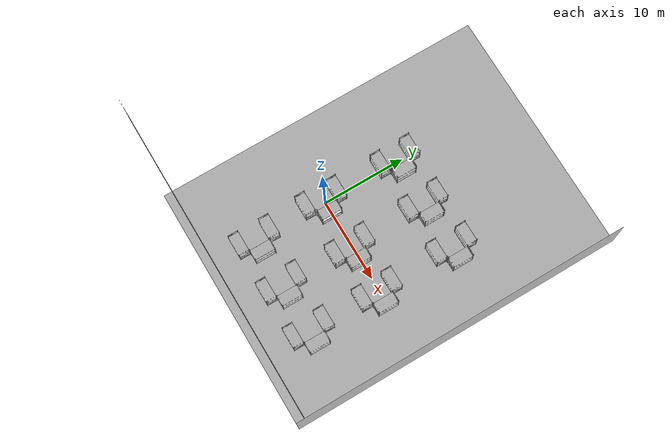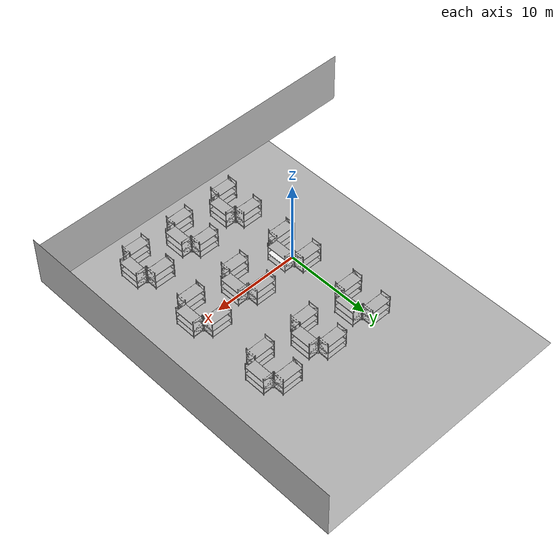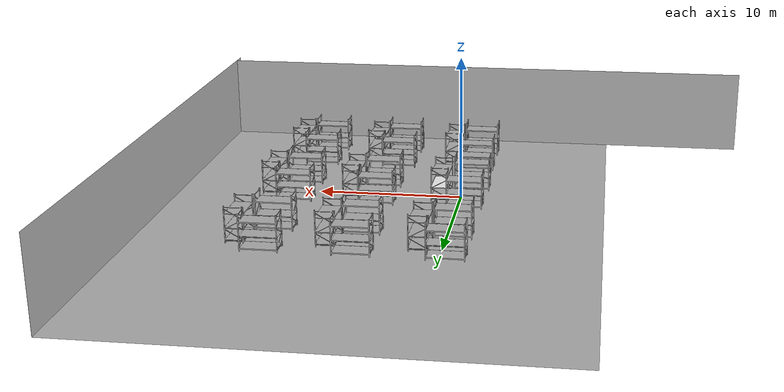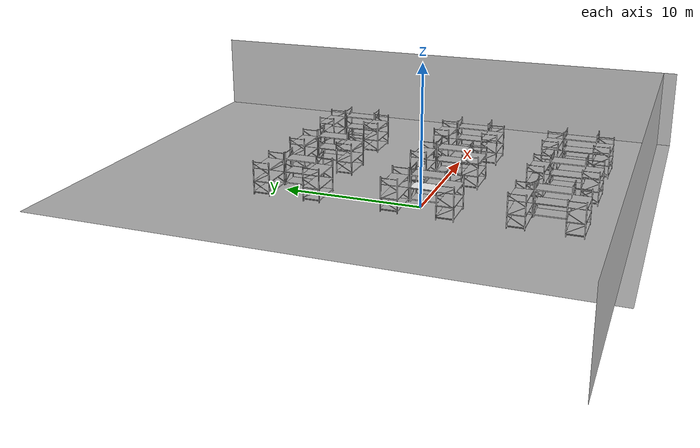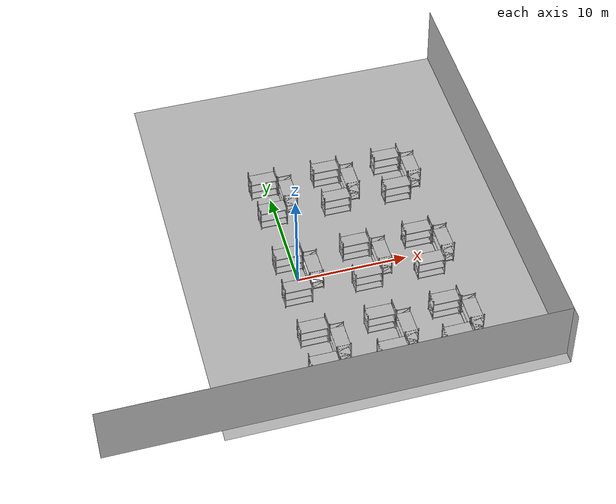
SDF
<sdf version="1.6">
 <world name="arm_and_table">
  <scene>
   <shadows>false</shadows>
   <ambient>0.400000006 0.400000006 0.400000006 1</ambient>
   <background>0.699999988 0.699999988 0.699999988 1</background>
  </scene>
  <model name="shelf">
   <static>true</static>
   <include><uri>model://shelf</uri></include>
   <pose>2 -1.5 0 0 0 0</pose>
  </model>
  <model name="middle_shelf">
   <static>true</static>
   <pose>1.4 -0.2 1.01 0 0 0</pose>
   <link name="link">
    <collision name="collision"><geometry><box><size>1.25 2.5 0.0375</size></box></geometry></collision>
    <visual name="visual">
     <geometry><box><size>1.25 2.5 0.0375</size></box></geometry>
     <material>
      <ambient>1 1 1 1</ambient>
      <diffuse>1 1 1 1</diffuse>
      <specular>1 1 1 1</specular>
      <emissive>0 0 0 1</emissive>
     </material>
    </visual>
   </link>
  </model>
  <model name="shelf_0">
   <static>true</static>
   <include><uri>model://shelf</uri></include>
   <pose>-1.8343919515609741 -2.8230617046356201 0 0 0 -1.5708000357176291</pose>
  </model>
  <model name="shelf_1">
   <static>true</static>
   <include><uri>model://shelf</uri></include>
   <pose>0.7833179235458374 2.3227524757385254 0 0 0 1.5708000357176291</pose>
  </model>
  <model name="shelf_2">
   <static>true</static>
   <include><uri>model://shelf</uri></include>
   <pose>8.2486696243286133 -1.5083321332931519 0 0 0 0</pose>
  </model>
  <model name="shelf_3">
   <static>true</static>
   <include><uri>model://shelf</uri></include>
   <pose>7.0212101936340332 -1.5661112070083618 0 0 0 1.5708000357176291</pose>
  </model>
  <model name="shelf_4">
   <static>true</static>
   <include><uri>model://shelf</uri></include>
   <pose>6.9280719757080078 2.2409090995788574 0 0 0 1.5708000357176291</pose>
  </model>
  <model name="shelf_5">
   <static>true</static>
   <include><uri>model://shelf</uri></include>
   <pose>2.1045401096343994 -9.9976902008056641 0 0 0 0</pose>
  </model>
  <model name="shelf_6">
   <static>true</static>
   <include><uri>model://shelf</uri></include>
   <pose>0.82871150970458984 -6.2359204292297363 0 0 0 1.5708000357176291</pose>
  </model>
  <model name="shelf_7">
   <static>true</static>
   <include><uri>model://shelf</uri></include>
   <pose>-1.678074836730957 -11.258501052856445 0 0 0 -1.5708000357176291</pose>
  </model>
  <model name="shelf_8">
   <static>true</static>
   <include><uri>model://shelf</uri></include>
   <pose>8 -10 0 0 0 0</pose>
  </model>
  <model name="shelf_9">
   <static>true</static>
   <include><uri>model://shelf</uri></include>
   <pose>6.7930102348327637 -10.035040855407715 0 0 0 1.5708000357176291</pose>
  </model>
  <model name="shelf_10">
   <static>true</static>
   <include><uri>model://shelf</uri></include>
   <pose>6.7468090057373047 -6.2733316421508789 0 0 0 1.5708000357176291</pose>
  </model>
  <model name="shelf_11">
   <static>true</static>
   <include><uri>model://shelf</uri></include>
   <pose>14 -1.5313600301742554 0 0 0 0</pose>
  </model>
  <model name="shelf_12">
   <static>true</static>
   <include><uri>model://shelf</uri></include>
   <pose>12.705499649047852 2.2107007503509521 0 0 0 1.5708000357176291</pose>
  </model>
  <model name="shelf_13">
   <static>true</static>
   <include><uri>model://shelf</uri></include>
   <pose>10.246963500976562 -2.8080301284790039 0 0 0 -1.5708000357176291</pose>
  </model>
  <model name="shelf_14">
   <static>true</static>
   <include><uri>model://shelf</uri></include>
   <pose>13.865300178527832 -9.9910001754760742 0 0 0 0</pose>
  </model>
  <model name="shelf_15">
   <static>true</static>
   <include><uri>model://shelf</uri></include>
   <pose>10.089049339294434 -7.4722795486450195 0 0 0 -1.5708000357176291</pose>
  </model>
  <model name="shelf_16">
   <static>true</static>
   <include><uri>model://shelf</uri></include>
   <pose>12.559500694274902 -10.010329246520996 0 0 0 1.5708000357176291</pose>
  </model>
  <model name="shelf_17">
   <static>true</static>
   <include><uri>model://shelf</uri></include>
   <pose>2.1045401096343994 8.0023097991943359 0 0 0 0</pose>
  </model>
  <model name="shelf_18">
   <static>true</static>
   <include><uri>model://shelf</uri></include>
   <pose>0.82871150970458984 11.7640795707702637 0 0 0 1.5708000357176291</pose>
  </model>
  <model name="shelf_19">
   <static>true</static>
   <include><uri>model://shelf</uri></include>
   <pose>-1.678074836730957 6.7414989471435547 0 0 0 -1.5708000357176291</pose>
  </model>
  <model name="shelf_20">
   <static>true</static>
   <include><uri>model://shelf</uri></include>
   <pose>8 8 0 0 0 0</pose>
  </model>
  <model name="shelf_21">
   <static>true</static>
   <include><uri>model://shelf</uri></include>
   <pose>6.7930102348327637 7.9649591445922852 0 0 0 1.5708000357176291</pose>
  </model>
  <model name="shelf_22">
   <static>true</static>
   <include><uri>model://shelf</uri></include>
   <pose>6.7468090057373047 11.7266683578491211 0 0 0 1.5708000357176291</pose>
  </model>
  <model name="shelf_23">
   <static>true</static>
   <include><uri>model://shelf</uri></include>
   <pose>13.865300178527832 8.0089998245239258 0 0 0 0</pose>
  </model>
  <model name="shelf_24">
   <static>true</static>
   <include><uri>model://shelf</uri></include>
   <pose>10.089049339294434 10.5277204513549805 0 0 0 -1.5708000357176291</pose>
  </model>
  <model name="shelf_25">
   <static>true</static>
   <include><uri>model://shelf</uri></include>
   <pose>12.559500694274902 7.989670753479004 0 0 0 1.5708000357176291</pose>
  </model>
  <model name="ground_plane">
   <static>true</static>
   <include><uri>model://floor</uri><name>floor</name><pose>5 5 0 0 0 0</pose></include>
  </model>
  <model name="wall1">
   <static>true</static>
   <include><uri>model://wall</uri><pose>20 5 0 0 0 3.1415900000000754</pose></include>
  </model>
  <model name="wall2">
   <static>true</static>
   <include><uri>model://wall</uri><pose>0 -14 0 0 0 1.5708000357176291</pose></include>
  </model>
  <light name="sun" type="directional">
   <pose>0 -10 10 0 0 0</pose>
   <cast_shadows>false</cast_shadows>
   <intensity>1</intensity>
   <direction>-0.5 0.10000000000000001 -0.90000000000000002</direction>
   <diffuse>0.800000012 0.800000012 0.800000012 1</diffuse>
   <specular>0.200000003 0.200000003 0.200000003 1</specular>
   <attenuation>
    <range>1000</range>
    <linear>0.01</linear>
    <constant>0.90000000000000002</constant>
    <quadratic>0.001</quadratic>
   </attenuation>
   <spot><inner_angle>0</inner_angle><outer_angle>0</outer_angle><falloff>0</falloff></spot>
  </light>
 </world>
</sdf>

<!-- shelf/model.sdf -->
<sdf version="1.6">
  <model name="shelf">
    <static>true</static>
    <link name="link">
      <collision name='bottom_shelf_collision'>
        <pose>-0.625 1.25 0.175 0 -0 0</pose>
        <geometry>
          <box>
            <size>1.25 2.5 0.0375</size>
          </box>
        </geometry>
        <surface>
          <friction>
            <ode>
              <mu>0.5</mu>
              <mu2>0.4</mu2>
            </ode>
            <torsional>
              <ode/>
            </torsional>
          </friction>
          <contact>
            <ode>
              <kp>1e+09</kp>
              <kd>10</kd>
            </ode>
          </contact>
          <bounce>
            <restitution_coefficient>0.1</restitution_coefficient>
            <threshold>0.1</threshold>
          </bounce>
        </surface>
        <max_contacts>10</max_contacts>
      </collision>

      <visual name="middle_shelf_visual">
        <pose>-0.625 1.25 1 0 -0 0</pose>
        <geometry>
          <box>
            <size>1.25 2.5 0.0375</size>
          </box>
        </geometry>
        <material>
            <ambient>1 1 1 1</ambient>
            <diffuse>1 1 1 1</diffuse>
            <specular>1 1 1 1</specular>
            <emissive>0 0 0 1</emissive>
        </material>
      </visual>
      <collision name='middle_shelf_collision'>
        <pose>-0.625 1.25 1 0 -0 0</pose>
        <geometry>
          <box>
            <size>1.25 2.5 0.0375</size>
          </box>
        </geometry>
        <surface>
          <friction>
            <ode>
              <mu>0.5</mu>
              <mu2>0.4</mu2>
            </ode>
            <torsional>
              <ode/>
            </torsional>
          </friction>
          <contact>
            <ode>
              <kp>1e+09</kp>
              <kd>10</kd>
            </ode>
          </contact>
          <bounce>
            <restitution_coefficient>0.1</restitution_coefficient>
            <threshold>0.1</threshold>
          </bounce>
        </surface>
        <max_contacts>10</max_contacts>
      </collision>

      <collision name='top_shelf_collision'>
        <pose>-0.625 1.25 1.94 0 -0 0</pose>
        <geometry>
          <box>
            <size>1.25 2.5 0.0375</size>
          </box>
        </geometry>
        <surface>
          <friction>
            <ode>
              <mu>0.5</mu>
              <mu2>0.4</mu2>
            </ode>
            <torsional>
              <ode/>
            </torsional>
          </friction>
          <contact>
            <ode>
              <kp>1e+09</kp>
              <kd>10</kd>
            </ode>
          </contact>
          <bounce>
            <restitution_coefficient>0.1</restitution_coefficient>
            <threshold>0.1</threshold>
          </bounce>
        </surface>
        <max_contacts>10</max_contacts>
      </collision>

      <visual name="visual_shelf">
        <geometry>
          <mesh>
            <uri>model://shelf/meshes/shelf.dae</uri>
            <scale>1 1 1</scale>
          </mesh>
        </geometry>
      </visual>
    </link>
  </model>
</sdf>

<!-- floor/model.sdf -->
<sdf version="1.6">
  <model name="floor">
    <static>true</static>
    <link name="link">
      <collision name="collision_floor">
        <pose>0 0 0 0 0 0</pose>
        <geometry>
          <plane>
            <normal>0 0 1</normal>
            <size>40 30</size>
          </plane>
        </geometry>
        <surface>
          <friction>
            <ode>
              <mu>0.7</mu>
              <mu2>0.6</mu2>
            </ode>
          </friction>
          <contact>
            <ode>
              <kp>1e9</kp>
              <kd>1</kd>
              <min_depth>0.001</min_depth>
              <max_vel>0.1</max_vel>
            </ode>
          </contact>
          <bounce>
            <restitution_coefficient>0.1</restitution_coefficient>
            <threshold>0.01</threshold>
          </bounce>
        </surface>
      </collision>
      <visual name="visual_floor">
        <geometry>
          <mesh>
            <uri>model://floor/meshes/floor.dae</uri>
            <scale>1 1 1</scale>
          </mesh>
        </geometry>
      </visual>
    </link>
  </model>
</sdf>

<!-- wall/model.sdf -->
<sdf version="1.6">
  <model name="wall">
    <static>true</static>
    <link name="link">
      <collision name="collision_wall">
        <pose>0 0 15 0 0 0</pose>
        <geometry>
          <plane>
            <normal>1 0 0</normal>
            <size>40 30</size>
          </plane>
        </geometry>
        <surface>
          <friction>
            <ode>
              <mu>0.9</mu>
              <mu2>0.8</mu2>
            </ode>
          </friction>
          <contact>
            <ode>
              <kp>1e9</kp>
              <kd>1</kd>
              <min_depth>0.001</min_depth>
              <max_vel>0.1</max_vel>
            </ode>
          </contact>
          <bounce>
            <restitution_coefficient>0.05</restitution_coefficient>
            <threshold>0.01</threshold>
          </bounce>
        </surface>
      </collision>

      <visual name="visual_wall">
        <pose>0 0 0 0 0 0</pose>
        <geometry>
          <mesh>
            <uri>model://wall/meshes/wall.dae</uri>
            <scale>1 1 1</scale>
          </mesh>
        </geometry>
      </visual>
    </link>
  </model>
</sdf>
